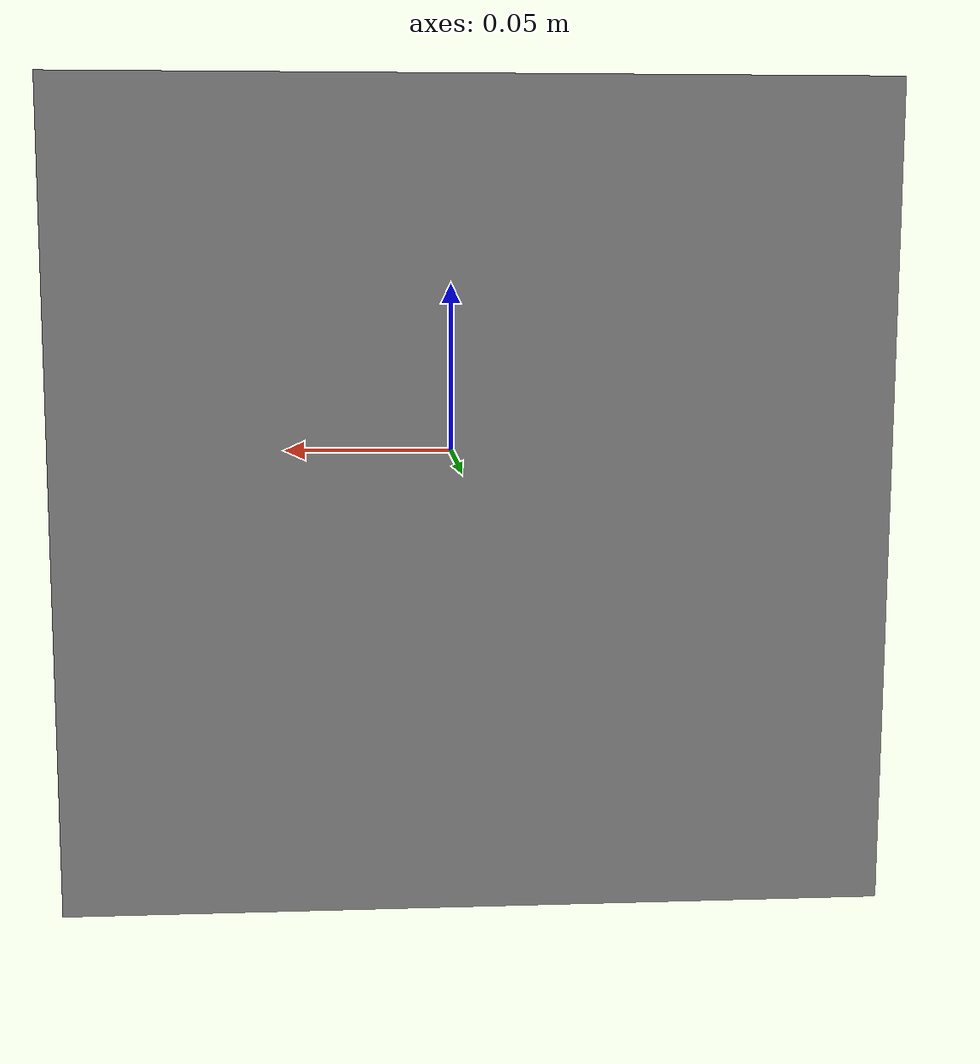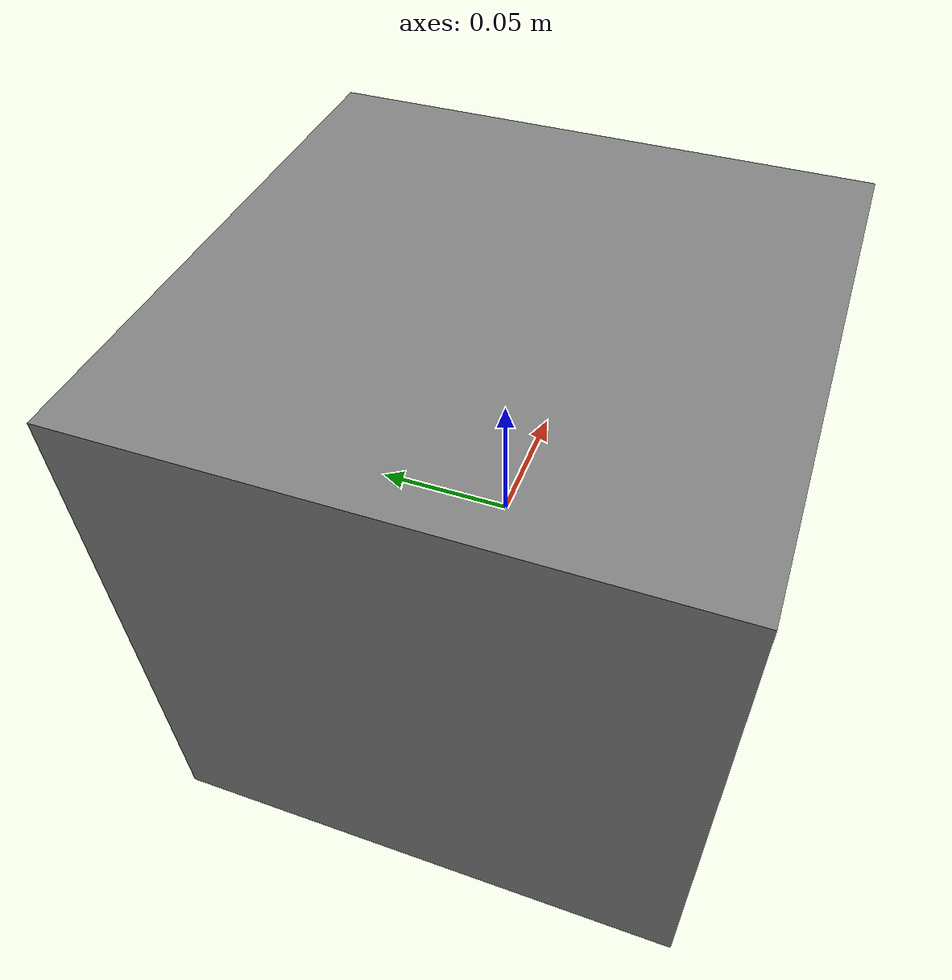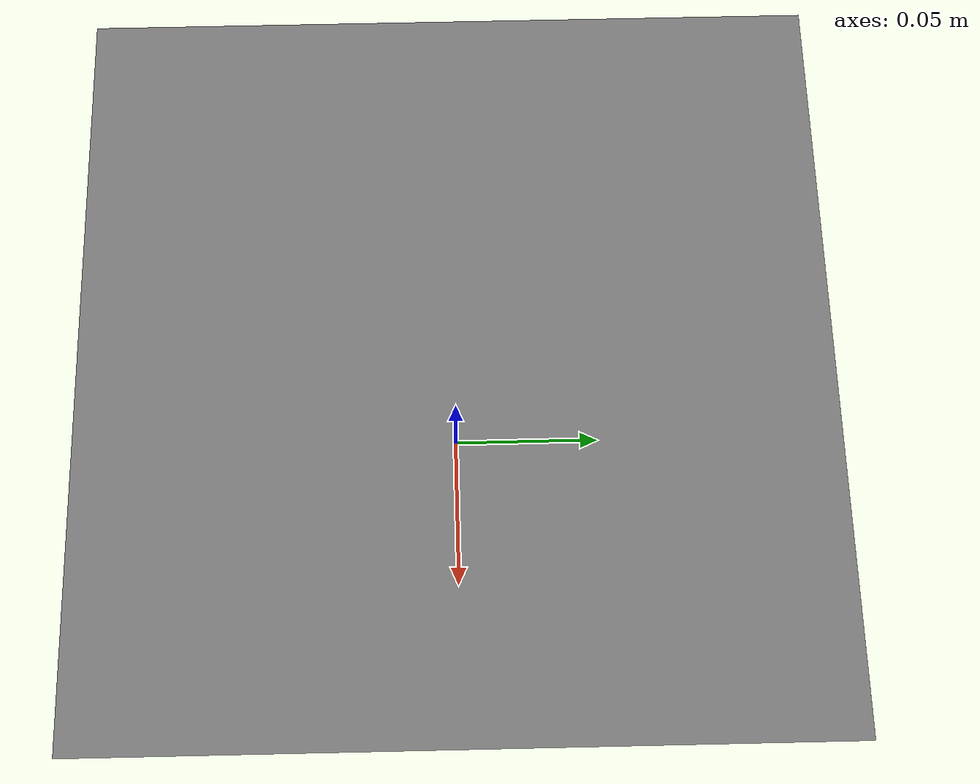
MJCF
<mujoco model="joint_limits_no_autolimits">
    <compiler autolimits="false" angle="degree"/>
    <worldbody>
        <!-- Explicitly limited joint -->
        <body name="body1">
            <geom type="box" size="0.1 0.1 0.1"/>
            <body name="body2">
                <joint name="limited_joint" type="hinge" limited="true" range="-45 45"/>
                <geom type="box" size="0.1 0.1 0.1"/>
            </body>
        </body>

        <!-- Explicitly unlimited joint -->
        <body name="body3">
            <geom type="box" size="0.1 0.1 0.1"/>
            <body name="body4">
                <joint name="unlimited_joint" type="hinge" limited="false"/>
                <geom type="box" size="0.1 0.1 0.1"/>
            </body>
        </body>

        <!-- Direct-mode solreflimit, which encodes (-stiffness, -damping). -->
        <body name="body5">
            <geom type="box" size="0.1 0.1 0.1"/>
            <body name="body6">
                <joint name="direct_limit_joint" type="hinge" limited="true" range="-20 20" solreflimit="-12 -3"/>
                <geom type="box" size="0.1 0.1 0.1"/>
            </body>
        </body>

        <!-- Standard-mode solreflimit, which encodes (timeconst, dampratio). -->
        <body name="body7">
            <geom type="box" size="0.1 0.1 0.1"/>
            <body name="body8">
                <joint name="linear_limit_joint" type="slide" limited="true" range="-0.2 0.4" solreflimit="0.04 0.5"/>
                <geom type="box" size="0.1 0.1 0.1"/>
            </body>
        </body>
    </worldbody>
</mujoco>
